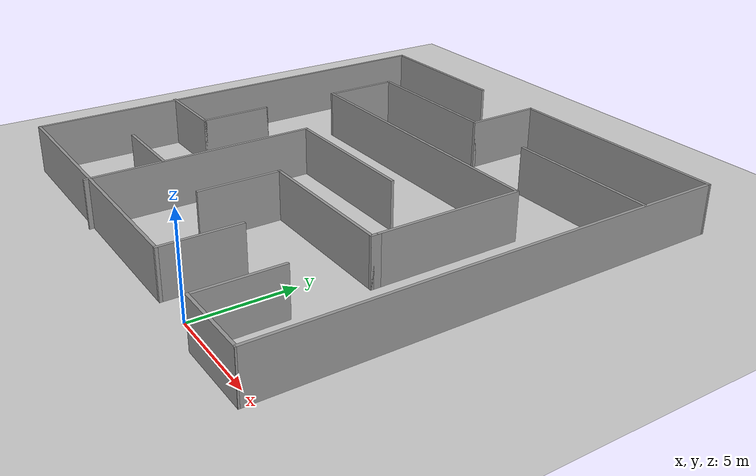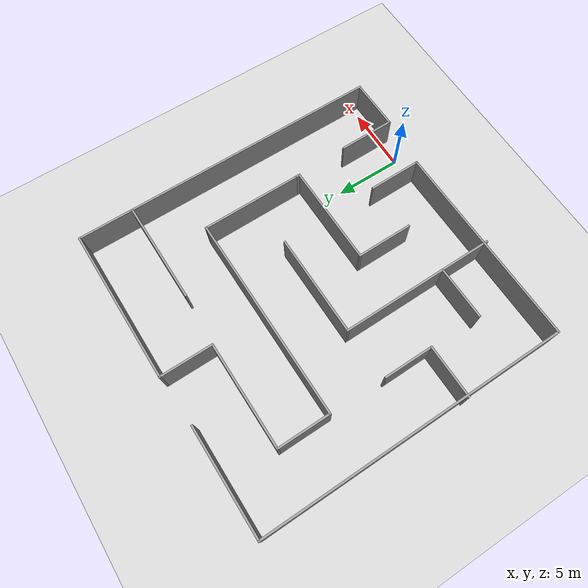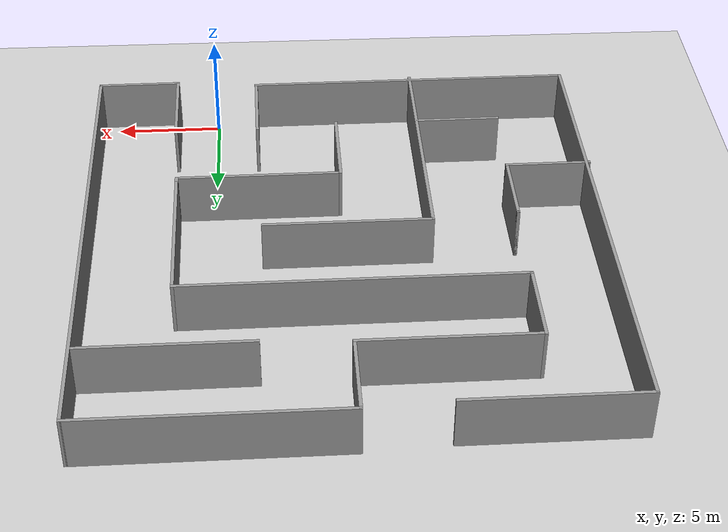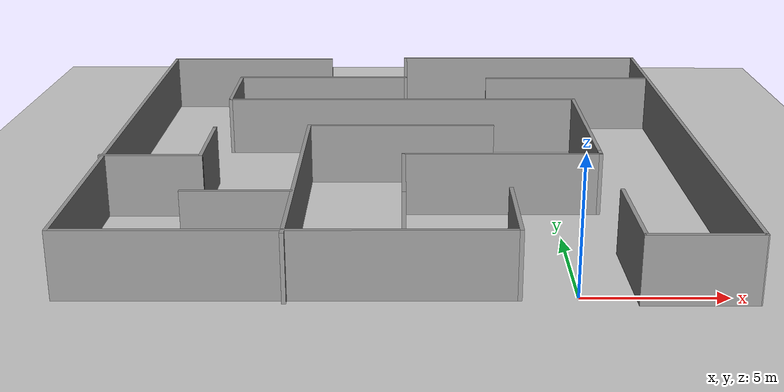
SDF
<sdf version="1.7">
 <world name="default">
  <light name="sun" type="directional">
   <pose>0 0 10 0 -0 0</pose>
   <diffuse>0.8 0.8 0.8 1</diffuse>
   <specular>0.2 0.2 0.2 1</specular>
   <attenuation>
    <range>1000</range>
    <constant>0.9</constant>
    <linear>0.01</linear>
    <quadratic>0.001</quadratic>
   </attenuation>
   <direction>-0.5 0.1 -0.9</direction>
   <spot><inner_angle>0</inner_angle><outer_angle>0</outer_angle><falloff>0</falloff></spot>
  </light>
  <model name="ground_plane">
   <static>1</static>
   <link name="link">
    <collision name="collision">
     <geometry><plane><normal>0 0 1</normal><size>100 100</size></plane></geometry>
     <surface>
      <contact><collide_bitmask>65535</collide_bitmask></contact>
      <friction><ode><mu>100</mu><mu2>50</mu2></ode></friction>
     </surface>
    </collision>
    <visual name="visual">
     <cast_shadows>0</cast_shadows>
     <geometry><plane><normal>0 0 1</normal><size>100 100</size></plane></geometry>
     <material>
      <script><uri>file://media/materials/scripts/gazebo.material</uri><name>Gazebo/Grey</name></script>
     </material>
    </visual>
   </link>
  </model>
  <gravity>0 0 -9.8</gravity>
  <magnetic_field>6e-06 2.3e-05 -4.2e-05</magnetic_field>
  <atmosphere type="adiabatic"/>
  <physics type="ode">
   <max_step_size>0.001</max_step_size>
   <real_time_factor>1</real_time_factor>
   <real_time_update_rate>1000</real_time_update_rate>
  </physics>
  <scene><ambient>0.4 0.4 0.4 1</ambient><background>0.7 0.7 0.7 1</background><shadows>1</shadows></scene>
  <spherical_coordinates>
   <surface_model>EARTH_WGS84</surface_model>
   <latitude_deg>0</latitude_deg>
   <longitude_deg>0</longitude_deg>
   <elevation>0</elevation>
   <heading_deg>0</heading_deg>
  </spherical_coordinates>
  <model name="actual-maze">
   <pose>-5.86742 11.0987 0 0 -0 1.58096</pose>
   <link name="Wall_10">
    <collision name="Wall_10_Collision">
     <geometry><box><size>4 0.15 2.5</size></box></geometry>
     <pose>0 0 1.25 0 -0 0</pose>
    </collision>
    <visual name="Wall_10_Visual">
     <pose>0 0 1.25 0 -0 0</pose>
     <geometry><box><size>4 0.15 2.5</size></box></geometry>
     <material>
      <script><uri>file://media/materials/scripts/gazebo.material</uri><name>Gazebo/Grey</name></script>
      <ambient>1 1 1 1</ambient>
     </material>
     <meta><layer>0</layer></meta>
    </visual>
    <pose>9.80376 -0.076483 0 0 -0 3.14159</pose>
   </link>
   <link name="Wall_11">
    <collision name="Wall_11_Collision">
     <geometry><box><size>8 0.15 2.5</size></box></geometry>
     <pose>0 0 1.25 0 -0 0</pose>
    </collision>
    <visual name="Wall_11_Visual">
     <pose>0 0 1.25 0 -0 0</pose>
     <geometry><box><size>8 0.15 2.5</size></box></geometry>
     <material>
      <script><uri>file://media/materials/scripts/gazebo.material</uri><name>Gazebo/Grey</name></script>
      <ambient>1 1 1 1</ambient>
     </material>
     <meta><layer>0</layer></meta>
    </visual>
    <pose>7.87876 3.84852 0 0 -0 1.5708</pose>
   </link>
   <link name="Wall_12">
    <collision name="Wall_12_Collision">
     <geometry><box><size>4 0.15 2.5</size></box></geometry>
     <pose>0 0 1.25 0 -0 0</pose>
    </collision>
    <visual name="Wall_12_Visual">
     <pose>0 0 1.25 0 -0 0</pose>
     <geometry><box><size>4 0.15 2.5</size></box></geometry>
     <material>
      <script><uri>file://media/materials/scripts/gazebo.material</uri><name>Gazebo/Grey</name></script>
      <ambient>1 1 1 1</ambient>
     </material>
     <meta><layer>0</layer></meta>
    </visual>
    <pose>5.95376 7.77352 0 0 -0 3.14159</pose>
   </link>
   <link name="Wall_13">
    <collision name="Wall_13_Collision">
     <geometry><box><size>15.5 0.15 2.5</size></box></geometry>
     <pose>0 0 1.25 0 -0 0</pose>
    </collision>
    <visual name="Wall_13_Visual">
     <pose>0 0 1.25 0 -0 0</pose>
     <geometry><box><size>15.5 0.15 2.5</size></box></geometry>
     <material>
      <script><uri>file://media/materials/scripts/gazebo.material</uri><name>Gazebo/Grey</name></script>
      <ambient>1 1 1 1</ambient>
     </material>
     <meta><layer>0</layer></meta>
    </visual>
    <pose>4.02876 0.098517 0 0 -0 -1.5708</pose>
   </link>
   <link name="Wall_14">
    <collision name="Wall_14_Collision">
     <geometry><box><size>7.5 0.15 2.5</size></box></geometry>
     <pose>0 0 1.25 0 -0 0</pose>
    </collision>
    <visual name="Wall_14_Visual">
     <pose>0 0 1.25 0 -0 0</pose>
     <geometry><box><size>7.5 0.15 2.5</size></box></geometry>
     <material>
      <script><uri>file://media/materials/scripts/gazebo.material</uri><name>Gazebo/Grey</name></script>
      <ambient>1 1 1 1</ambient>
     </material>
     <meta><layer>0</layer></meta>
    </visual>
    <pose>0.353758 -7.57648 0 0 -0 3.14159</pose>
   </link>
   <link name="Wall_15">
    <collision name="Wall_15_Collision">
     <geometry><box><size>0.5 0.15 2.5</size></box></geometry>
     <pose>0 0 1.25 0 -0 0</pose>
    </collision>
    <visual name="Wall_15_Visual">
     <pose>0 0 1.25 0 -0 0</pose>
     <geometry><box><size>0.5 0.15 2.5</size></box></geometry>
     <material>
      <script><uri>file://media/materials/scripts/gazebo.material</uri><name>Gazebo/Grey</name></script>
      <ambient>1 1 1 1</ambient>
     </material>
     <meta><layer>0</layer></meta>
    </visual>
    <pose>-3.49624 -7.57648 0 0 -0 3.14159</pose>
   </link>
   <link name="Wall_16">
    <collision name="Wall_16_Collision">
     <geometry><box><size>7.75 0.15 2.5</size></box></geometry>
     <pose>0 0 1.25 0 -0 0</pose>
    </collision>
    <visual name="Wall_16_Visual">
     <pose>0 0 1.25 0 -0 0</pose>
     <geometry><box><size>7.75 0.15 2.5</size></box></geometry>
     <material>
      <script><uri>file://media/materials/scripts/gazebo.material</uri><name>Gazebo/Grey</name></script>
      <ambient>1 1 1 1</ambient>
     </material>
     <meta><layer>0</layer></meta>
    </visual>
    <pose>-3.67124 -3.77648 0 0 -0 1.5708</pose>
   </link>
   <link name="Wall_17">
    <collision name="Wall_17_Collision">
     <geometry><box><size>4.25 0.15 2.5</size></box></geometry>
     <pose>0 0 1.25 0 -0 0</pose>
    </collision>
    <visual name="Wall_17_Visual">
     <pose>0 0 1.25 0 -0 0</pose>
     <geometry><box><size>4.25 0.15 2.5</size></box></geometry>
     <material>
      <script><uri>file://media/materials/scripts/gazebo.material</uri><name>Gazebo/Grey</name></script>
      <ambient>1 1 1 1</ambient>
     </material>
     <meta><layer>0</layer></meta>
    </visual>
    <pose>-5.72124 0.023517 0 0 -0 3.14159</pose>
   </link>
   <link name="Wall_19">
    <collision name="Wall_19_Collision">
     <geometry><box><size>7.75 0.15 2.5</size></box></geometry>
     <pose>0 0 1.25 0 -0 0</pose>
    </collision>
    <visual name="Wall_19_Visual">
     <pose>0 0 1.25 0 -0 0</pose>
     <geometry><box><size>7.75 0.15 2.5</size></box></geometry>
     <material>
      <script><uri>file://media/materials/scripts/gazebo.material</uri><name>Gazebo/Grey</name></script>
      <ambient>1 1 1 1</ambient>
     </material>
     <meta><layer>0</layer></meta>
    </visual>
    <pose>7.66023 -7.79511 0 0 -0 1.5708</pose>
   </link>
   <link name="Wall_21">
    <collision name="Wall_21_Collision">
     <geometry><box><size>4 0.15 2.5</size></box></geometry>
     <pose>0 0 1.25 0 -0 0</pose>
    </collision>
    <visual name="Wall_21_Visual">
     <pose>0 0 1.25 0 -0 0</pose>
     <geometry><box><size>4 0.15 2.5</size></box></geometry>
     <material>
      <script><uri>file://media/materials/scripts/gazebo.material</uri><name>Gazebo/Grey</name></script>
      <ambient>1 1 1 1</ambient>
     </material>
     <meta><layer>0</layer></meta>
    </visual>
    <pose>-9.39971 -3.78353 0 0 -0 3.14159</pose>
   </link>
   <link name="Wall_22">
    <collision name="Wall_22_Collision">
     <geometry><box><size>15.5 0.15 2.5</size></box></geometry>
     <pose>0 0 1.25 0 -0 0</pose>
    </collision>
    <visual name="Wall_22_Visual">
     <pose>0 0 1.25 0 -0 0</pose>
     <geometry><box><size>15.5 0.15 2.5</size></box></geometry>
     <material>
      <script><uri>file://media/materials/scripts/gazebo.material</uri><name>Gazebo/Grey</name></script>
      <ambient>1 1 1 1</ambient>
     </material>
     <meta><layer>0</layer></meta>
    </visual>
    <pose>-11.3247 3.89147 0 0 -0 1.5708</pose>
   </link>
   <link name="Wall_23">
    <collision name="Wall_23_Collision">
     <geometry><box><size>23 0.15 2.5</size></box></geometry>
     <pose>0 0 1.25 0 -0 0</pose>
    </collision>
    <visual name="Wall_23_Visual">
     <pose>0 0 1.25 0 -0 0</pose>
     <geometry><box><size>23 0.15 2.5</size></box></geometry>
     <material>
      <script><uri>file://media/materials/scripts/gazebo.material</uri><name>Gazebo/Grey</name></script>
      <ambient>1 1 1 1</ambient>
     </material>
     <meta><layer>0</layer></meta>
    </visual>
    <pose>0.100293 11.5665 0 0 -0 0</pose>
   </link>
   <link name="Wall_24">
    <collision name="Wall_24_Collision">
     <geometry><box><size>8 0.15 2.5</size></box></geometry>
     <pose>0 0 1.25 0 -0 0</pose>
    </collision>
    <visual name="Wall_24_Visual">
     <pose>0 0 1.25 0 -0 0</pose>
     <geometry><box><size>8 0.15 2.5</size></box></geometry>
     <material>
      <script><uri>file://media/materials/scripts/gazebo.material</uri><name>Gazebo/Grey</name></script>
      <ambient>1 1 1 1</ambient>
     </material>
     <meta><layer>0</layer></meta>
    </visual>
    <pose>11.5253 7.64147 0 0 -0 -1.5708</pose>
   </link>
   <link name="Wall_26">
    <collision name="Wall_26_Collision">
     <geometry><box><size>11.75 0.15 2.5</size></box></geometry>
     <pose>0 0 1.25 0 -0 0</pose>
    </collision>
    <visual name="Wall_26_Visual">
     <pose>0 0 1.25 0 -0 0</pose>
     <geometry><box><size>11.75 0.15 2.5</size></box></geometry>
     <material>
      <script><uri>file://media/materials/scripts/gazebo.material</uri><name>Gazebo/Grey</name></script>
      <ambient>1 1 1 1</ambient>
     </material>
     <meta><layer>0</layer></meta>
    </visual>
    <pose>-5.74324 3.94667 0 0 -0 0</pose>
   </link>
   <link name="Wall_27">
    <collision name="Wall_27_Collision">
     <geometry><box><size>7.75 0.15 2.5</size></box></geometry>
     <pose>0 0 1.25 0 -0 0</pose>
    </collision>
    <visual name="Wall_27_Visual">
     <pose>0 0 1.25 0 -0 0</pose>
     <geometry><box><size>7.75 0.15 2.5</size></box></geometry>
     <material>
      <script><uri>file://media/materials/scripts/gazebo.material</uri><name>Gazebo/Grey</name></script>
      <ambient>1 1 1 1</ambient>
     </material>
     <meta><layer>0</layer></meta>
    </visual>
    <pose>0.056762 0.146675 0 0 -0 -1.5708</pose>
   </link>
   <link name="Wall_29">
    <collision name="Wall_29_Collision">
     <geometry><box><size>4 0.15 2.5</size></box></geometry>
     <pose>0 0 1.25 0 -0 0</pose>
    </collision>
    <visual name="Wall_29_Visual">
     <pose>0 0 1.25 0 -0 0</pose>
     <geometry><box><size>4 0.15 2.5</size></box></geometry>
     <material>
      <script><uri>file://media/materials/scripts/gazebo.material</uri><name>Gazebo/Grey</name></script>
      <ambient>1 1 1 1</ambient>
     </material>
     <meta><layer>0</layer></meta>
    </visual>
    <pose>-7.71882 5.95305 0 0 -0 1.5708</pose>
   </link>
   <link name="Wall_31">
    <collision name="Wall_31_Collision">
     <geometry><box><size>4 0.15 2.5</size></box></geometry>
     <pose>0 0 1.25 0 -0 0</pose>
    </collision>
    <visual name="Wall_31_Visual">
     <pose>0 0 1.25 0 -0 0</pose>
     <geometry><box><size>4 0.15 2.5</size></box></geometry>
     <material>
      <script><uri>file://media/materials/scripts/gazebo.material</uri><name>Gazebo/Grey</name></script>
      <ambient>1 1 1 1</ambient>
     </material>
     <meta><layer>0</layer></meta>
    </visual>
    <pose>-3.81303 9.75188 0 0 -0 -1.5708</pose>
   </link>
   <link name="Wall_32">
    <collision name="Wall_32_Collision">
     <geometry><box><size>3.75 0.15 2.5</size></box></geometry>
     <pose>0 0 1.25 0 -0 0</pose>
    </collision>
    <visual name="Wall_32_Visual">
     <pose>0 0 1.25 0 -0 0</pose>
     <geometry><box><size>3.75 0.15 2.5</size></box></geometry>
     <material>
      <script><uri>file://media/materials/scripts/gazebo.material</uri><name>Gazebo/Grey</name></script>
      <ambient>1 1 1 1</ambient>
     </material>
     <meta><layer>0</layer></meta>
    </visual>
    <pose>-2.01303 7.82688 0 0 -0 0</pose>
   </link>
   <link name="Wall_33">
    <collision name="Wall_33_Collision">
     <geometry><box><size>0.15 0.15 2.5</size></box></geometry>
     <pose>0 0 1.25 0 -0 0</pose>
    </collision>
    <visual name="Wall_33_Visual">
     <pose>0 0 1.25 0 -0 0</pose>
     <geometry><box><size>0.15 0.15 2.5</size></box></geometry>
     <material>
      <script><uri>file://media/materials/scripts/gazebo.material</uri><name>Gazebo/Grey</name></script>
      <ambient>1 1 1 1</ambient>
     </material>
     <meta><layer>0</layer></meta>
    </visual>
    <pose>-0.213029 7.82688 0 0 -0 0</pose>
   </link>
   <link name="Wall_6">
    <collision name="Wall_6_Collision">
     <geometry><box><size>4.25 0.15 2.5</size></box></geometry>
     <pose>0 0 1.25 0 -0 0</pose>
    </collision>
    <visual name="Wall_6_Visual">
     <pose>0 0 1.25 0 -0 0</pose>
     <geometry><box><size>4.25 0.15 2.5</size></box></geometry>
     <material>
      <script><uri>file://media/materials/scripts/gazebo.material</uri><name>Gazebo/Grey</name></script>
      <ambient>1 1 1 1</ambient>
     </material>
     <meta><layer>0</layer></meta>
    </visual>
    <pose>-9.67876 -7.70036 0 0 -0 3.14159</pose>
   </link>
   <link name="Wall_7">
    <collision name="Wall_7_Collision">
     <geometry><box><size>4 0.15 2.5</size></box></geometry>
     <pose>0 0 1.25 0 -0 0</pose>
    </collision>
    <visual name="Wall_7_Visual">
     <pose>0 0 1.25 0 -0 0</pose>
     <geometry><box><size>4 0.15 2.5</size></box></geometry>
     <material>
      <script><uri>file://media/materials/scripts/gazebo.material</uri><name>Gazebo/Grey</name></script>
      <ambient>1 1 1 1</ambient>
     </material>
     <meta><layer>0</layer></meta>
    </visual>
    <pose>-11.7288 -9.62536 0 0 -0 -1.5708</pose>
   </link>
   <link name="Wall_8">
    <collision name="Wall_8_Collision">
     <geometry><box><size>23.6076 0.15 2.5</size></box></geometry>
     <pose>0 0 1.25 0 -0 0</pose>
    </collision>
    <visual name="Wall_8_Visual">
     <pose>0 0 1.25 0 -0 0</pose>
     <geometry><box><size>23.6076 0.15 2.5</size></box></geometry>
     <material>
      <script><uri>file://media/materials/scripts/gazebo.material</uri><name>Gazebo/Grey</name></script>
      <ambient>1 1 1 1</ambient>
     </material>
     <meta><layer>0</layer></meta>
    </visual>
    <pose>-0 -11.6134 0 0 -0 -0.005377</pose>
   </link>
   <link name="Wall_9">
    <collision name="Wall_9_Collision">
     <geometry><box><size>11.75 0.15 2.5</size></box></geometry>
     <pose>0 0 1.25 0 -0 0</pose>
    </collision>
    <visual name="Wall_9_Visual">
     <pose>0 0 1.25 0 -0 0</pose>
     <geometry><box><size>11.75 0.15 2.5</size></box></geometry>
     <material>
      <script><uri>file://media/materials/scripts/gazebo.material</uri><name>Gazebo/Grey</name></script>
      <ambient>1 1 1 1</ambient>
     </material>
     <meta><layer>0</layer></meta>
    </visual>
    <pose>11.7288 -5.87648 0 0 -0 1.5708</pose>
   </link>
   <static>1</static>
  </model>
 </world>
</sdf>
